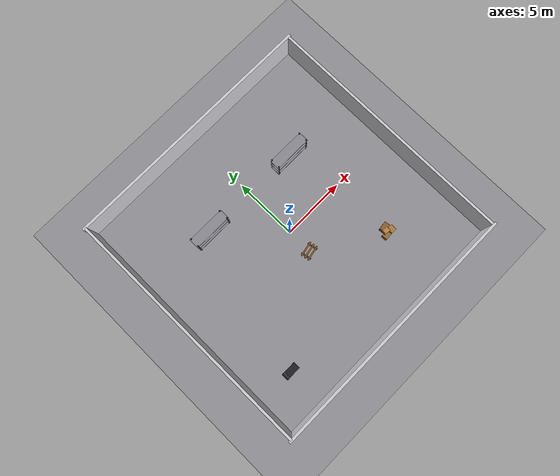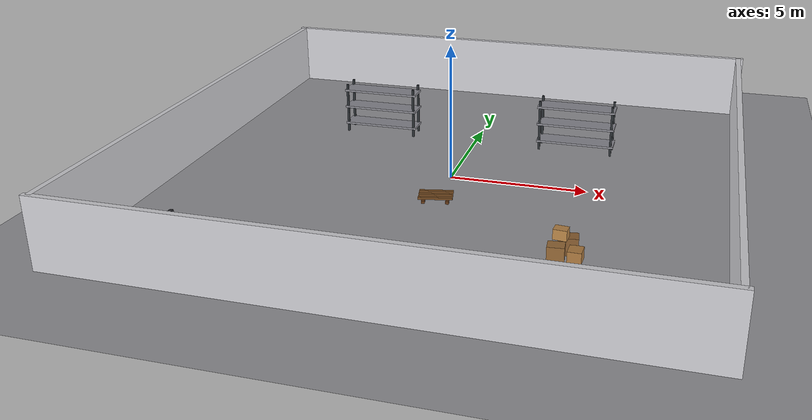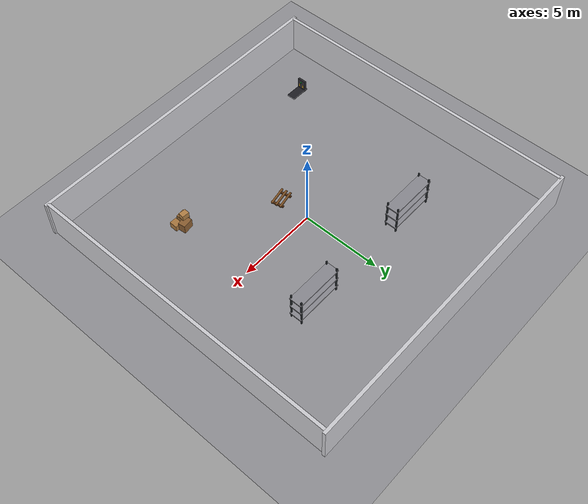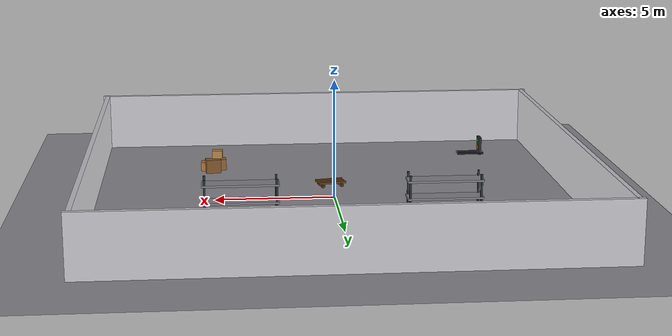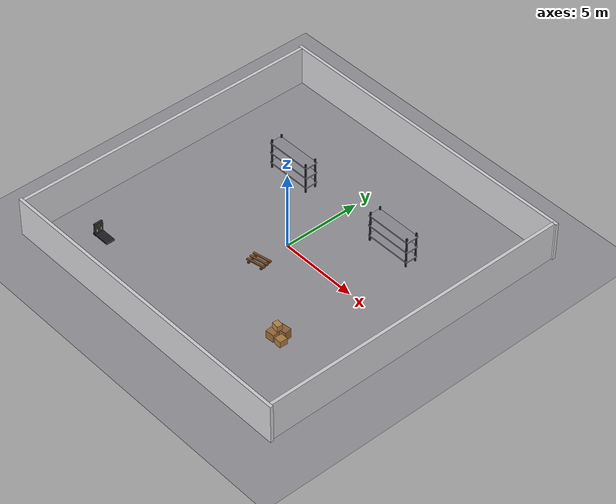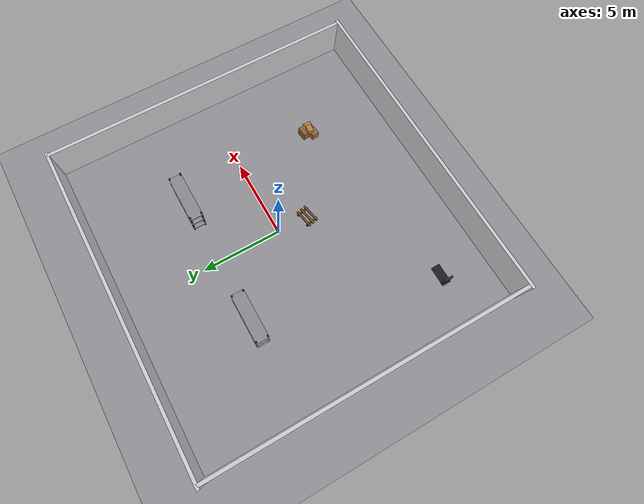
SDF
<?xml version="1.0"?>
<sdf version="1.11">
  <world name="benchmark_warehouse_easy">
    <physics name="1ms" type="ignored"><max_step_size>0.001</max_step_size><real_time_factor>1.0</real_time_factor></physics>
    <plugin filename="gz-sim-physics-system" name="gz::sim::systems::Physics"/>
    <plugin filename="gz-sim-sensors-system" name="gz::sim::systems::Sensors"><render_engine>ogre2</render_engine></plugin>
    <plugin filename="gz-sim-scene-broadcaster-system" name="gz::sim::systems::SceneBroadcaster"/>
    <plugin filename="gz-sim-user-commands-system" name="gz::sim::systems::UserCommands"/>
    <plugin filename="gz-sim-imu-system" name="gz::sim::systems::Imu"/>
    <model name="ground_plane"><static>true</static><link name="link"><collision name="collision"><geometry><plane><normal>0 0 1</normal><size>60 60</size></plane></geometry></collision><visual name="visual"><geometry><plane><normal>0 0 1</normal><size>60 60</size></plane></geometry><material><ambient>0.58 0.58 0.60 1</ambient><diffuse>0.58 0.58 0.60 1</diffuse></material></visual></link></model>
    <light name="sun" type="directional"><cast_shadows>true</cast_shadows><pose>0 0 10 0 0 0</pose><diffuse>0.85 0.85 0.85 1</diffuse><direction>-0.4 0.2 -0.9</direction></light>

    <model name="wall_north"><static>true</static><pose>0 10 1.25 0 0 0</pose><link name="link"><collision name="collision"><geometry><box><size>20.4 0.2 2.5</size></box></geometry></collision><visual name="visual"><geometry><box><size>20.4 0.2 2.5</size></box></geometry><material><ambient>0.82 0.82 0.84 1</ambient><diffuse>0.82 0.82 0.84 1</diffuse></material></visual></link></model>
    <model name="wall_south"><static>true</static><pose>0 -10 1.25 0 0 0</pose><link name="link"><collision name="collision"><geometry><box><size>20.4 0.2 2.5</size></box></geometry></collision><visual name="visual"><geometry><box><size>20.4 0.2 2.5</size></box></geometry><material><ambient>0.82 0.82 0.84 1</ambient><diffuse>0.82 0.82 0.84 1</diffuse></material></visual></link></model>
    <model name="wall_east"><static>true</static><pose>10 0 1.25 0 0 0</pose><link name="link"><collision name="collision"><geometry><box><size>0.2 20.0 2.5</size></box></geometry></collision><visual name="visual"><geometry><box><size>0.2 20.0 2.5</size></box></geometry><material><ambient>0.82 0.82 0.84 1</ambient><diffuse>0.82 0.82 0.84 1</diffuse></material></visual></link></model>
    <model name="wall_west"><static>true</static><pose>-10 0 1.25 0 0 0</pose><link name="link"><collision name="collision"><geometry><box><size>0.2 20.0 2.5</size></box></geometry></collision><visual name="visual"><geometry><box><size>0.2 20.0 2.5</size></box></geometry><material><ambient>0.82 0.82 0.84 1</ambient><diffuse>0.82 0.82 0.84 1</diffuse></material></visual></link></model>

    <include><name>shelf_easy_01</name><uri>model://warehouse_shelf</uri><pose>-4 4 0 0 0 0</pose></include>
    <include><name>shelf_easy_02</name><uri>model://warehouse_shelf</uri><pose>4 4 0 0 0 0</pose></include>
    <include><name>pallet_easy_01</name><uri>model://warehouse_pallet</uri><pose>0 -2 0 0 0 0.2</pose></include>
    <include><name>box_cluster_easy_01</name><uri>model://warehouse_box_cluster</uri><pose>5 -5 0 0 0 0</pose></include>
    <include><name>charging_dock_easy_01</name><uri>model://charging_dock</uri><pose>-7 -7 0 0 0 0</pose></include>
  </world>
</sdf>

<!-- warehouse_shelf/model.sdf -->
<sdf version="1.11">
  <model name="warehouse_shelf">
    <static>true</static>
    <link name="link">
      <collision name="collision">
        <geometry><box><size>3.0 0.8 2.0</size></box></geometry>
        <pose>0 0 1.0 0 0 0</pose>
      </collision>
      <visual name="upright_left"><pose>-1.4 -0.35 1.0 0 0 0</pose><geometry><box><size>0.08 0.08 2.0</size></box></geometry><material><ambient>0.18 0.20 0.22 1</ambient><diffuse>0.18 0.20 0.22 1</diffuse></material></visual>
      <visual name="upright_right"><pose>1.4 -0.35 1.0 0 0 0</pose><geometry><box><size>0.08 0.08 2.0</size></box></geometry><material><ambient>0.18 0.20 0.22 1</ambient><diffuse>0.18 0.20 0.22 1</diffuse></material></visual>
      <visual name="upright_back_left"><pose>-1.4 0.35 1.0 0 0 0</pose><geometry><box><size>0.08 0.08 2.0</size></box></geometry><material><ambient>0.18 0.20 0.22 1</ambient><diffuse>0.18 0.20 0.22 1</diffuse></material></visual>
      <visual name="upright_back_right"><pose>1.4 0.35 1.0 0 0 0</pose><geometry><box><size>0.08 0.08 2.0</size></box></geometry><material><ambient>0.18 0.20 0.22 1</ambient><diffuse>0.18 0.20 0.22 1</diffuse></material></visual>
      <visual name="shelf_bottom"><pose>0 0 0.35 0 0 0</pose><geometry><box><size>3.0 0.8 0.08</size></box></geometry><material><ambient>0.55 0.55 0.58 1</ambient><diffuse>0.55 0.55 0.58 1</diffuse></material></visual>
      <visual name="shelf_middle"><pose>0 0 1.05 0 0 0</pose><geometry><box><size>3.0 0.8 0.08</size></box></geometry><material><ambient>0.55 0.55 0.58 1</ambient><diffuse>0.55 0.55 0.58 1</diffuse></material></visual>
      <visual name="shelf_top"><pose>0 0 1.75 0 0 0</pose><geometry><box><size>3.0 0.8 0.08</size></box></geometry><material><ambient>0.55 0.55 0.58 1</ambient><diffuse>0.55 0.55 0.58 1</diffuse></material></visual>
    </link>
  </model>
</sdf>

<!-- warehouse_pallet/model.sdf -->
<sdf version="1.11">
  <model name="warehouse_pallet">
    <static>true</static>
    <link name="link">
      <collision name="collision"><pose>0 0 0.09 0 0 0</pose><geometry><box><size>1.2 0.8 0.18</size></box></geometry></collision>
      <visual name="deck_front"><pose>0 -0.28 0.18 0 0 0</pose><geometry><box><size>1.2 0.12 0.08</size></box></geometry><material><ambient>0.50 0.32 0.14 1</ambient><diffuse>0.50 0.32 0.14 1</diffuse></material></visual>
      <visual name="deck_mid"><pose>0 0 0.18 0 0 0</pose><geometry><box><size>1.2 0.12 0.08</size></box></geometry><material><ambient>0.50 0.32 0.14 1</ambient><diffuse>0.50 0.32 0.14 1</diffuse></material></visual>
      <visual name="deck_back"><pose>0 0.28 0.18 0 0 0</pose><geometry><box><size>1.2 0.12 0.08</size></box></geometry><material><ambient>0.50 0.32 0.14 1</ambient><diffuse>0.50 0.32 0.14 1</diffuse></material></visual>
      <visual name="runner_left"><pose>-0.42 0 0.06 0 0 0</pose><geometry><box><size>0.12 0.8 0.10</size></box></geometry><material><ambient>0.42 0.24 0.10 1</ambient><diffuse>0.42 0.24 0.10 1</diffuse></material></visual>
      <visual name="runner_right"><pose>0.42 0 0.06 0 0 0</pose><geometry><box><size>0.12 0.8 0.10</size></box></geometry><material><ambient>0.42 0.24 0.10 1</ambient><diffuse>0.42 0.24 0.10 1</diffuse></material></visual>
    </link>
  </model>
</sdf>

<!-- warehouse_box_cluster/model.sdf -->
<sdf version="1.11">
  <model name="warehouse_box_cluster">
    <static>true</static>
    <link name="link">
      <collision name="collision"><pose>0 0 0.35 0 0 0</pose><geometry><box><size>1.2 1.0 0.7</size></box></geometry></collision>
      <visual name="box_a"><pose>-0.25 -0.20 0.25 0 0 0.08</pose><geometry><box><size>0.55 0.45 0.50</size></box></geometry><material><ambient>0.60 0.42 0.22 1</ambient><diffuse>0.60 0.42 0.22 1</diffuse></material></visual>
      <visual name="box_b"><pose>0.35 -0.15 0.20 0 0 -0.04</pose><geometry><box><size>0.45 0.50 0.40</size></box></geometry><material><ambient>0.68 0.48 0.25 1</ambient><diffuse>0.68 0.48 0.25 1</diffuse></material></visual>
      <visual name="box_c"><pose>0.05 0.30 0.30 0 0 0.12</pose><geometry><box><size>0.65 0.45 0.60</size></box></geometry><material><ambient>0.56 0.38 0.20 1</ambient><diffuse>0.56 0.38 0.20 1</diffuse></material></visual>
      <visual name="box_d"><pose>-0.15 0.05 0.78 0 0 -0.10</pose><geometry><box><size>0.45 0.35 0.35</size></box></geometry><material><ambient>0.72 0.52 0.28 1</ambient><diffuse>0.72 0.52 0.28 1</diffuse></material></visual>
    </link>
  </model>
</sdf>

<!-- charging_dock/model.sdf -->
<sdf version="1.11">
  <model name="charging_dock">
    <static>true</static>
    <link name="link">
      <collision name="collision"><pose>0 0 0.25 0 0 0</pose><geometry><box><size>0.9 0.25 0.5</size></box></geometry></collision>
      <visual name="base"><pose>0 0 0.12 0 0 0</pose><geometry><box><size>1.2 0.55 0.08</size></box></geometry><material><ambient>0.12 0.12 0.14 1</ambient><diffuse>0.12 0.12 0.14 1</diffuse></material></visual>
      <visual name="back_plate"><pose>-0.45 0 0.45 0 0 0</pose><geometry><box><size>0.12 0.55 0.8</size></box></geometry><material><ambient>0.18 0.18 0.20 1</ambient><diffuse>0.18 0.18 0.20 1</diffuse></material></visual>
      <visual name="contact_left"><pose>-0.37 -0.14 0.38 0 0 0</pose><geometry><box><size>0.025 0.09 0.20</size></box></geometry><material><ambient>0.95 0.75 0.20 1</ambient><diffuse>0.95 0.75 0.20 1</diffuse></material></visual>
      <visual name="contact_right"><pose>-0.37 0.14 0.38 0 0 0</pose><geometry><box><size>0.025 0.09 0.20</size></box></geometry><material><ambient>0.95 0.75 0.20 1</ambient><diffuse>0.95 0.75 0.20 1</diffuse></material></visual>
      <visual name="status_light"><pose>-0.36 0 0.68 0 0 0</pose><geometry><sphere><radius>0.045</radius></sphere></geometry><material><ambient>0.0 0.8 0.2 1</ambient><diffuse>0.0 0.8 0.2 1</diffuse><emissive>0.0 0.4 0.1 1</emissive></material></visual>
    </link>
  </model>
</sdf>
